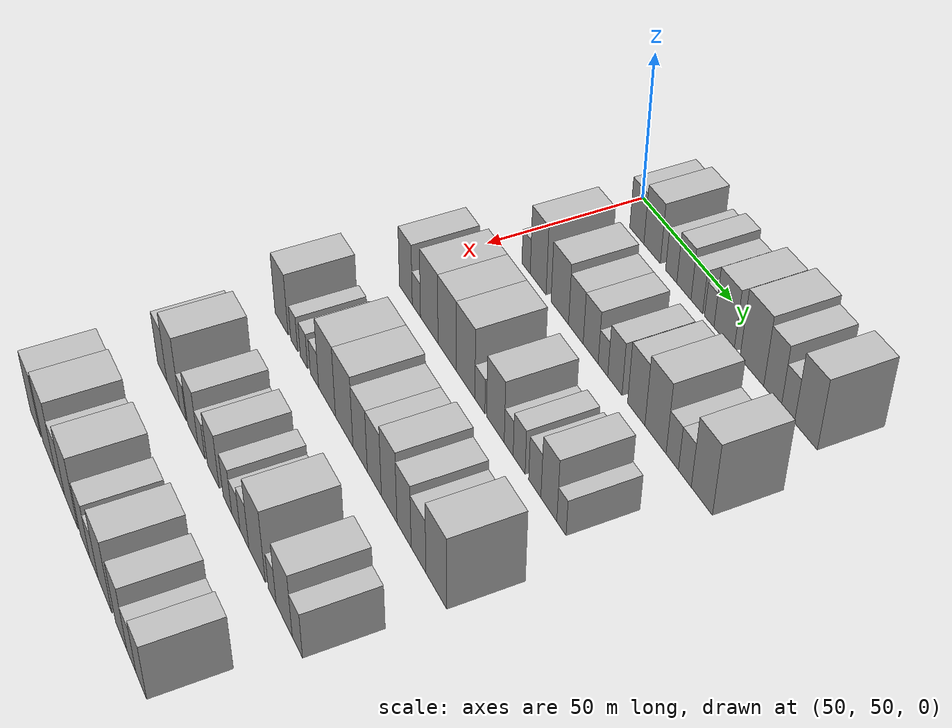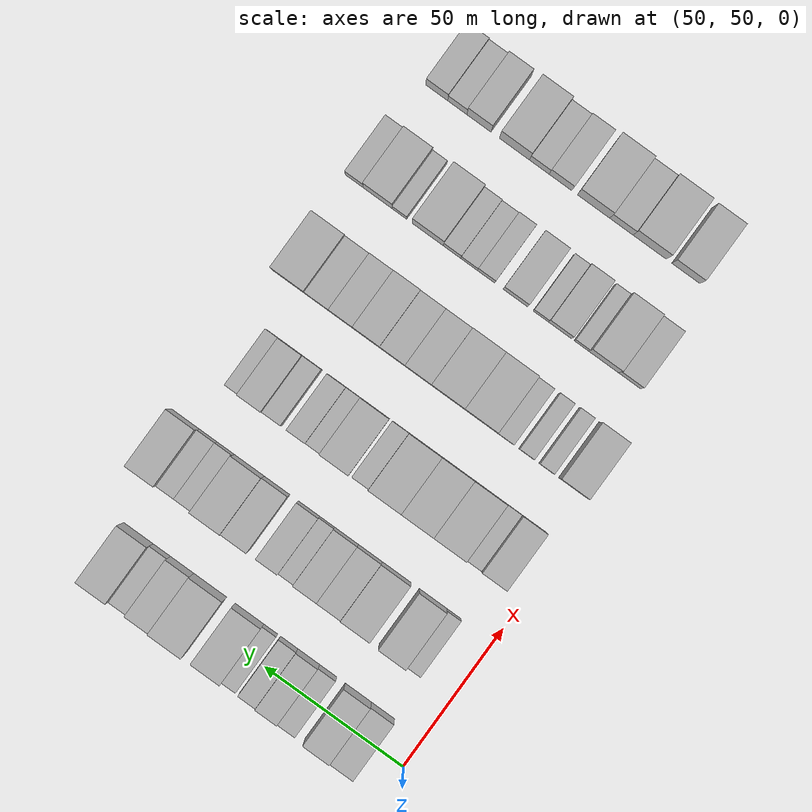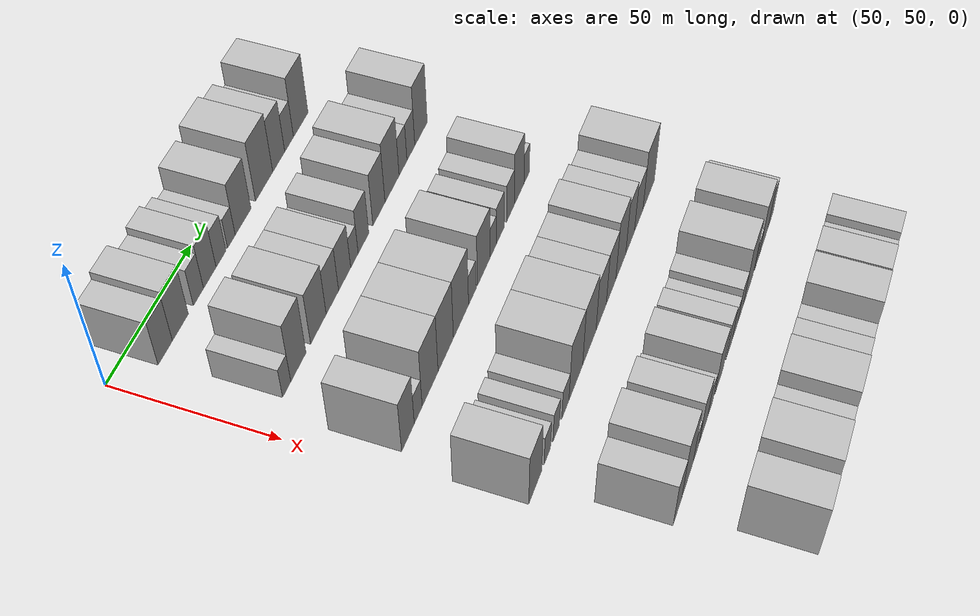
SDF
<sdf version="1.6">
 <world name="default">
  <model name="building_63">
   <static>1</static>
   <pose>50.0000 64.4754 0 0.000000 0.000000 0.000000</pose>
   <link name="link">
    <pose>0 0 9.00 0 0 0</pose>
    <collision name="collision"><geometry><box><size>20.0000 8.2859 18.0000</size></box></geometry></collision>
    <visual name="visual">
     <cast_shadows>0</cast_shadows>
     <geometry><box><size>20.0000 8.2859 18.0000</size></box></geometry>
     <material>
      <script>
       <uri>model://HANNAS_wall/materials/scripts</uri>
       <uri>model://HANNAS_wall/materials/textures</uri>
       <name>vrc/HANNAS_wall</name>
      </script>
     </material>
    </visual>
   </link>
  </model>
  <model name="building_64">
   <static>1</static>
   <pose>50.0000 73.3406 0 0.000000 0.000000 0.000000</pose>
   <link name="link">
    <pose>0 0 10.50 0 0 0</pose>
    <collision name="collision"><geometry><box><size>20.0000 9.4444 21.0000</size></box></geometry></collision>
    <visual name="visual">
     <cast_shadows>0</cast_shadows>
     <geometry><box><size>20.0000 9.4444 21.0000</size></box></geometry>
     <material>
      <script>
       <uri>model://HANNAS_wall/materials/scripts</uri>
       <uri>model://HANNAS_wall/materials/textures</uri>
       <name>vrc/HANNAS_wall</name>
      </script>
     </material>
    </visual>
   </link>
  </model>
  <model name="building_65">
   <static>1</static>
   <pose>50.0000 84.1799 0 0.000000 0.000000 0.000000</pose>
   <link name="link">
    <pose>0 0 7.50 0 0 0</pose>
    <collision name="collision"><geometry><box><size>20.0000 6.2342 15.0000</size></box></geometry></collision>
    <visual name="visual">
     <cast_shadows>0</cast_shadows>
     <geometry><box><size>20.0000 6.2342 15.0000</size></box></geometry>
     <material>
      <script>
       <uri>model://HANNAS_wall/materials/scripts</uri>
       <uri>model://HANNAS_wall/materials/textures</uri>
       <name>vrc/HANNAS_wall</name>
      </script>
     </material>
    </visual>
   </link>
  </model>
  <model name="building_66">
   <static>1</static>
   <pose>50.0000 91.1978 0 0.000000 0.000000 0.000000</pose>
   <link name="link">
    <pose>0 0 9.00 0 0 0</pose>
    <collision name="collision"><geometry><box><size>20.0000 7.8017 18.0000</size></box></geometry></collision>
    <visual name="visual">
     <cast_shadows>0</cast_shadows>
     <geometry><box><size>20.0000 7.8017 18.0000</size></box></geometry>
     <material>
      <script>
       <uri>model://HANNAS_wall/materials/scripts</uri>
       <uri>model://HANNAS_wall/materials/textures</uri>
       <name>vrc/HANNAS_wall</name>
      </script>
     </material>
    </visual>
   </link>
  </model>
  <model name="building_67">
   <static>1</static>
   <pose>50.0000 98.2192 0 0.000000 0.000000 0.000000</pose>
   <link name="link">
    <pose>0 0 7.50 0 0 0</pose>
    <collision name="collision"><geometry><box><size>20.0000 6.2409 15.0000</size></box></geometry></collision>
    <visual name="visual">
     <cast_shadows>0</cast_shadows>
     <geometry><box><size>20.0000 6.2409 15.0000</size></box></geometry>
     <material>
      <script>
       <uri>model://HANNAS_wall/materials/scripts</uri>
       <uri>model://HANNAS_wall/materials/textures</uri>
       <name>vrc/HANNAS_wall</name>
      </script>
     </material>
    </visual>
   </link>
  </model>
  <model name="building_68">
   <static>1</static>
   <pose>50.0000 104.8364 0 0.000000 0.000000 0.000000</pose>
   <link name="link">
    <pose>0 0 6.00 0 0 0</pose>
    <collision name="collision"><geometry><box><size>20.0000 4.9936 12.0000</size></box></geometry></collision>
    <visual name="visual">
     <cast_shadows>0</cast_shadows>
     <geometry><box><size>20.0000 4.9936 12.0000</size></box></geometry>
     <material>
      <script>
       <uri>model://HANNAS_wall/materials/scripts</uri>
       <uri>model://HANNAS_wall/materials/textures</uri>
       <name>vrc/HANNAS_wall</name>
      </script>
     </material>
    </visual>
   </link>
  </model>
  <model name="building_69">
   <static>1</static>
   <pose>50.0000 112.5214 0 0.000000 0.000000 0.000000</pose>
   <link name="link">
    <pose>0 0 10.50 0 0 0</pose>
    <collision name="collision"><geometry><box><size>20.0000 10.3764 21.0000</size></box></geometry></collision>
    <visual name="visual">
     <cast_shadows>0</cast_shadows>
     <geometry><box><size>20.0000 10.3764 21.0000</size></box></geometry>
     <material>
      <script>
       <uri>model://HANNAS_wall/materials/scripts</uri>
       <uri>model://HANNAS_wall/materials/textures</uri>
       <name>vrc/HANNAS_wall</name>
      </script>
     </material>
    </visual>
   </link>
  </model>
  <model name="building_70">
   <static>1</static>
   <pose>50.0000 126.6201 0 0.000000 0.000000 0.000000</pose>
   <link name="link">
    <pose>0 0 12.00 0 0 0</pose>
    <collision name="collision"><geometry><box><size>20.0000 11.8209 24.0000</size></box></geometry></collision>
    <visual name="visual">
     <cast_shadows>0</cast_shadows>
     <geometry><box><size>20.0000 11.8209 24.0000</size></box></geometry>
     <material>
      <script>
       <uri>model://HANNAS_wall/materials/scripts</uri>
       <uri>model://HANNAS_wall/materials/textures</uri>
       <name>vrc/HANNAS_wall</name>
      </script>
     </material>
    </visual>
   </link>
  </model>
  <model name="building_71">
   <static>1</static>
   <pose>50.0000 136.7458 0 0.000000 0.000000 0.000000</pose>
   <link name="link">
    <pose>0 0 10.50 0 0 0</pose>
    <collision name="collision"><geometry><box><size>20.0000 8.4306 21.0000</size></box></geometry></collision>
    <visual name="visual">
     <cast_shadows>0</cast_shadows>
     <geometry><box><size>20.0000 8.4306 21.0000</size></box></geometry>
     <material>
      <script>
       <uri>model://HANNAS_wall/materials/scripts</uri>
       <uri>model://HANNAS_wall/materials/textures</uri>
       <name>vrc/HANNAS_wall</name>
      </script>
     </material>
    </visual>
   </link>
  </model>
  <model name="building_72">
   <static>1</static>
   <pose>50.0000 144.0854 0 0.000000 0.000000 0.000000</pose>
   <link name="link">
    <pose>0 0 7.50 0 0 0</pose>
    <collision name="collision"><geometry><box><size>20.0000 6.2485 15.0000</size></box></geometry></collision>
    <visual name="visual">
     <cast_shadows>0</cast_shadows>
     <geometry><box><size>20.0000 6.2485 15.0000</size></box></geometry>
     <material>
      <script>
       <uri>model://HANNAS_wall/materials/scripts</uri>
       <uri>model://HANNAS_wall/materials/textures</uri>
       <name>vrc/HANNAS_wall</name>
      </script>
     </material>
    </visual>
   </link>
  </model>
  <model name="building_73">
   <static>1</static>
   <pose>50.0000 152.5046 0 0.000000 0.000000 0.000000</pose>
   <link name="link">
    <pose>0 0 12.00 0 0 0</pose>
    <collision name="collision"><geometry><box><size>20.0000 10.5899 24.0000</size></box></geometry></collision>
    <visual name="visual">
     <cast_shadows>0</cast_shadows>
     <geometry><box><size>20.0000 10.5899 24.0000</size></box></geometry>
     <material>
      <script>
       <uri>model://HANNAS_wall/materials/scripts</uri>
       <uri>model://HANNAS_wall/materials/textures</uri>
       <name>vrc/HANNAS_wall</name>
      </script>
     </material>
    </visual>
   </link>
  </model>
  <model name="building_191">
   <static>1</static>
   <pose>85.0000 64.3727 0 0.000000 0.000000 0.000000</pose>
   <link name="link">
    <pose>0 0 6.00 0 0 0</pose>
    <collision name="collision"><geometry><box><size>20.0000 5.1861 12.0000</size></box></geometry></collision>
    <visual name="visual">
     <cast_shadows>0</cast_shadows>
     <geometry><box><size>20.0000 5.1861 12.0000</size></box></geometry>
     <material>
      <script>
       <uri>model://HANNAS_wall/materials/scripts</uri>
       <uri>model://HANNAS_wall/materials/textures</uri>
       <name>vrc/HANNAS_wall</name>
      </script>
     </material>
    </visual>
   </link>
  </model>
  <model name="building_192">
   <static>1</static>
   <pose>85.0000 71.8611 0 0.000000 0.000000 0.000000</pose>
   <link name="link">
    <pose>0 0 12.00 0 0 0</pose>
    <collision name="collision"><geometry><box><size>20.0000 9.7908 24.0000</size></box></geometry></collision>
    <visual name="visual">
     <cast_shadows>0</cast_shadows>
     <geometry><box><size>20.0000 9.7908 24.0000</size></box></geometry>
     <material>
      <script>
       <uri>model://HANNAS_wall/materials/scripts</uri>
       <uri>model://HANNAS_wall/materials/textures</uri>
       <name>vrc/HANNAS_wall</name>
      </script>
     </material>
    </visual>
   </link>
  </model>
  <model name="building_193">
   <static>1</static>
   <pose>85.0000 84.9729 0 0.000000 0.000000 0.000000</pose>
   <link name="link">
    <pose>0 0 10.50 0 0 0</pose>
    <collision name="collision"><geometry><box><size>20.0000 10.4328 21.0000</size></box></geometry></collision>
    <visual name="visual">
     <cast_shadows>0</cast_shadows>
     <geometry><box><size>20.0000 10.4328 21.0000</size></box></geometry>
     <material>
      <script>
       <uri>model://HANNAS_wall/materials/scripts</uri>
       <uri>model://HANNAS_wall/materials/textures</uri>
       <name>vrc/HANNAS_wall</name>
      </script>
     </material>
    </visual>
   </link>
  </model>
  <model name="building_194">
   <static>1</static>
   <pose>85.0000 94.4465 0 0.000000 0.000000 0.000000</pose>
   <link name="link">
    <pose>0 0 9.00 0 0 0</pose>
    <collision name="collision"><geometry><box><size>20.0000 8.5144 18.0000</size></box></geometry></collision>
    <visual name="visual">
     <cast_shadows>0</cast_shadows>
     <geometry><box><size>20.0000 8.5144 18.0000</size></box></geometry>
     <material>
      <script>
       <uri>model://HANNAS_wall/materials/scripts</uri>
       <uri>model://HANNAS_wall/materials/textures</uri>
       <name>vrc/HANNAS_wall</name>
      </script>
     </material>
    </visual>
   </link>
  </model>
  <model name="building_195">
   <static>1</static>
   <pose>85.0000 102.9443 0 0.000000 0.000000 0.000000</pose>
   <link name="link">
    <pose>0 0 9.00 0 0 0</pose>
    <collision name="collision"><geometry><box><size>20.0000 8.4813 18.0000</size></box></geometry></collision>
    <visual name="visual">
     <cast_shadows>0</cast_shadows>
     <geometry><box><size>20.0000 8.4813 18.0000</size></box></geometry>
     <material>
      <script>
       <uri>model://HANNAS_wall/materials/scripts</uri>
       <uri>model://HANNAS_wall/materials/textures</uri>
       <name>vrc/HANNAS_wall</name>
      </script>
     </material>
    </visual>
   </link>
  </model>
  <model name="building_196">
   <static>1</static>
   <pose>85.0000 109.8589 0 0.000000 0.000000 0.000000</pose>
   <link name="link">
    <pose>0 0 6.00 0 0 0</pose>
    <collision name="collision"><geometry><box><size>20.0000 5.3480 12.0000</size></box></geometry></collision>
    <visual name="visual">
     <cast_shadows>0</cast_shadows>
     <geometry><box><size>20.0000 5.3480 12.0000</size></box></geometry>
     <material>
      <script>
       <uri>model://HANNAS_wall/materials/scripts</uri>
       <uri>model://HANNAS_wall/materials/textures</uri>
       <name>vrc/HANNAS_wall</name>
      </script>
     </material>
    </visual>
   </link>
  </model>
  <model name="building_197">
   <static>1</static>
   <pose>85.0000 116.4089 0 0.000000 0.000000 0.000000</pose>
   <link name="link">
    <pose>0 0 9.00 0 0 0</pose>
    <collision name="collision"><geometry><box><size>20.0000 7.7520 18.0000</size></box></geometry></collision>
    <visual name="visual">
     <cast_shadows>0</cast_shadows>
     <geometry><box><size>20.0000 7.7520 18.0000</size></box></geometry>
     <material>
      <script>
       <uri>model://HANNAS_wall/materials/scripts</uri>
       <uri>model://HANNAS_wall/materials/textures</uri>
       <name>vrc/HANNAS_wall</name>
      </script>
     </material>
    </visual>
   </link>
  </model>
  <model name="building_198">
   <static>1</static>
   <pose>85.0000 127.8521 0 0.000000 0.000000 0.000000</pose>
   <link name="link">
    <pose>0 0 10.50 0 0 0</pose>
    <collision name="collision"><geometry><box><size>20.0000 9.1344 21.0000</size></box></geometry></collision>
    <visual name="visual">
     <cast_shadows>0</cast_shadows>
     <geometry><box><size>20.0000 9.1344 21.0000</size></box></geometry>
     <material>
      <script>
       <uri>model://HANNAS_wall/materials/scripts</uri>
       <uri>model://HANNAS_wall/materials/textures</uri>
       <name>vrc/HANNAS_wall</name>
      </script>
     </material>
    </visual>
   </link>
  </model>
  <model name="building_199">
   <static>1</static>
   <pose>85.0000 137.8445 0 0.000000 0.000000 0.000000</pose>
   <link name="link">
    <pose>0 0 12.00 0 0 0</pose>
    <collision name="collision"><geometry><box><size>20.0000 10.8503 24.0000</size></box></geometry></collision>
    <visual name="visual">
     <cast_shadows>0</cast_shadows>
     <geometry><box><size>20.0000 10.8503 24.0000</size></box></geometry>
     <material>
      <script>
       <uri>model://HANNAS_wall/materials/scripts</uri>
       <uri>model://HANNAS_wall/materials/textures</uri>
       <name>vrc/HANNAS_wall</name>
      </script>
     </material>
    </visual>
   </link>
  </model>
  <model name="building_200">
   <static>1</static>
   <pose>85.0000 146.3585 0 0.000000 0.000000 0.000000</pose>
   <link name="link">
    <pose>0 0 7.50 0 0 0</pose>
    <collision name="collision"><geometry><box><size>20.0000 6.1777 15.0000</size></box></geometry></collision>
    <visual name="visual">
     <cast_shadows>0</cast_shadows>
     <geometry><box><size>20.0000 6.1777 15.0000</size></box></geometry>
     <material>
      <script>
       <uri>model://HANNAS_wall/materials/scripts</uri>
       <uri>model://HANNAS_wall/materials/textures</uri>
       <name>vrc/HANNAS_wall</name>
      </script>
     </material>
    </visual>
   </link>
  </model>
  <model name="building_201">
   <static>1</static>
   <pose>85.0000 152.6045 0 0.000000 0.000000 0.000000</pose>
   <link name="link">
    <pose>0 0 7.50 0 0 0</pose>
    <collision name="collision"><geometry><box><size>20.0000 6.3144 15.0000</size></box></geometry></collision>
    <visual name="visual">
     <cast_shadows>0</cast_shadows>
     <geometry><box><size>20.0000 6.3144 15.0000</size></box></geometry>
     <material>
      <script>
       <uri>model://HANNAS_wall/materials/scripts</uri>
       <uri>model://HANNAS_wall/materials/textures</uri>
       <name>vrc/HANNAS_wall</name>
      </script>
     </material>
    </visual>
   </link>
  </model>
  <model name="building_202">
   <static>1</static>
   <pose>85.0000 160.8288 0 0.000000 0.000000 0.000000</pose>
   <link name="link">
    <pose>0 0 12.00 0 0 0</pose>
    <collision name="collision"><geometry><box><size>20.0000 10.1341 24.0000</size></box></geometry></collision>
    <visual name="visual">
     <cast_shadows>0</cast_shadows>
     <geometry><box><size>20.0000 10.1341 24.0000</size></box></geometry>
     <material>
      <script>
       <uri>model://HANNAS_wall/materials/scripts</uri>
       <uri>model://HANNAS_wall/materials/textures</uri>
       <name>vrc/HANNAS_wall</name>
      </script>
     </material>
    </visual>
   </link>
  </model>
  <model name="building_322">
   <static>1</static>
   <pose>120.0000 61.0671 0 0.000000 0.000000 0.000000</pose>
   <link name="link">
    <pose>0 0 10.50 0 0 0</pose>
    <collision name="collision"><geometry><box><size>20.0000 8.7876 21.0000</size></box></geometry></collision>
    <visual name="visual">
     <cast_shadows>0</cast_shadows>
     <geometry><box><size>20.0000 8.7876 21.0000</size></box></geometry>
     <material>
      <script>
       <uri>model://HANNAS_wall/materials/scripts</uri>
       <uri>model://HANNAS_wall/materials/textures</uri>
       <name>vrc/HANNAS_wall</name>
      </script>
     </material>
    </visual>
   </link>
  </model>
  <model name="building_323">
   <static>1</static>
   <pose>120.0000 68.2368 0 0.000000 0.000000 0.000000</pose>
   <link name="link">
    <pose>0 0 6.00 0 0 0</pose>
    <collision name="collision"><geometry><box><size>20.0000 5.5518 12.0000</size></box></geometry></collision>
    <visual name="visual">
     <cast_shadows>0</cast_shadows>
     <geometry><box><size>20.0000 5.5518 12.0000</size></box></geometry>
     <material>
      <script>
       <uri>model://HANNAS_wall/materials/scripts</uri>
       <uri>model://HANNAS_wall/materials/textures</uri>
       <name>vrc/HANNAS_wall</name>
      </script>
     </material>
    </visual>
   </link>
  </model>
  <model name="building_324">
   <static>1</static>
   <pose>120.0000 76.8002 0 0.000000 0.000000 0.000000</pose>
   <link name="link">
    <pose>0 0 12.00 0 0 0</pose>
    <collision name="collision"><geometry><box><size>20.0000 11.5750 24.0000</size></box></geometry></collision>
    <visual name="visual">
     <cast_shadows>0</cast_shadows>
     <geometry><box><size>20.0000 11.5750 24.0000</size></box></geometry>
     <material>
      <script>
       <uri>model://HANNAS_wall/materials/scripts</uri>
       <uri>model://HANNAS_wall/materials/textures</uri>
       <name>vrc/HANNAS_wall</name>
      </script>
     </material>
    </visual>
   </link>
  </model>
  <model name="building_325">
   <static>1</static>
   <pose>120.0000 88.3191 0 0.000000 0.000000 0.000000</pose>
   <link name="link">
    <pose>0 0 12.00 0 0 0</pose>
    <collision name="collision"><geometry><box><size>20.0000 11.4628 24.0000</size></box></geometry></collision>
    <visual name="visual">
     <cast_shadows>0</cast_shadows>
     <geometry><box><size>20.0000 11.4628 24.0000</size></box></geometry>
     <material>
      <script>
       <uri>model://HANNAS_wall/materials/scripts</uri>
       <uri>model://HANNAS_wall/materials/textures</uri>
       <name>vrc/HANNAS_wall</name>
      </script>
     </material>
    </visual>
   </link>
  </model>
  <model name="building_326">
   <static>1</static>
   <pose>120.0000 99.9039 0 0.000000 0.000000 0.000000</pose>
   <link name="link">
    <pose>0 0 12.00 0 0 0</pose>
    <collision name="collision"><geometry><box><size>20.0000 11.7069 24.0000</size></box></geometry></collision>
    <visual name="visual">
     <cast_shadows>0</cast_shadows>
     <geometry><box><size>20.0000 11.7069 24.0000</size></box></geometry>
     <material>
      <script>
       <uri>model://HANNAS_wall/materials/scripts</uri>
       <uri>model://HANNAS_wall/materials/textures</uri>
       <name>vrc/HANNAS_wall</name>
      </script>
     </material>
    </visual>
   </link>
  </model>
  <model name="building_327">
   <static>1</static>
   <pose>120.0000 108.7568 0 0.000000 0.000000 0.000000</pose>
   <link name="link">
    <pose>0 0 6.00 0 0 0</pose>
    <collision name="collision"><geometry><box><size>20.0000 5.9990 12.0000</size></box></geometry></collision>
    <visual name="visual">
     <cast_shadows>0</cast_shadows>
     <geometry><box><size>20.0000 5.9990 12.0000</size></box></geometry>
     <material>
      <script>
       <uri>model://HANNAS_wall/materials/scripts</uri>
       <uri>model://HANNAS_wall/materials/textures</uri>
       <name>vrc/HANNAS_wall</name>
      </script>
     </material>
    </visual>
   </link>
  </model>
  <model name="building_328">
   <static>1</static>
   <pose>120.0000 117.9341 0 0.000000 0.000000 0.000000</pose>
   <link name="link">
    <pose>0 0 10.50 0 0 0</pose>
    <collision name="collision"><geometry><box><size>20.0000 10.3556 21.0000</size></box></geometry></collision>
    <visual name="visual">
     <cast_shadows>0</cast_shadows>
     <geometry><box><size>20.0000 10.3556 21.0000</size></box></geometry>
     <material>
      <script>
       <uri>model://HANNAS_wall/materials/scripts</uri>
       <uri>model://HANNAS_wall/materials/textures</uri>
       <name>vrc/HANNAS_wall</name>
      </script>
     </material>
    </visual>
   </link>
  </model>
  <model name="building_329">
   <static>1</static>
   <pose>120.0000 125.6752 0 0.000000 0.000000 0.000000</pose>
   <link name="link">
    <pose>0 0 6.00 0 0 0</pose>
    <collision name="collision"><geometry><box><size>20.0000 5.1267 12.0000</size></box></geometry></collision>
    <visual name="visual">
     <cast_shadows>0</cast_shadows>
     <geometry><box><size>20.0000 5.1267 12.0000</size></box></geometry>
     <material>
      <script>
       <uri>model://HANNAS_wall/materials/scripts</uri>
       <uri>model://HANNAS_wall/materials/textures</uri>
       <name>vrc/HANNAS_wall</name>
      </script>
     </material>
    </visual>
   </link>
  </model>
  <model name="building_330">
   <static>1</static>
   <pose>120.0000 131.5993 0 0.000000 0.000000 0.000000</pose>
   <link name="link">
    <pose>0 0 7.50 0 0 0</pose>
    <collision name="collision"><geometry><box><size>20.0000 6.7216 15.0000</size></box></geometry></collision>
    <visual name="visual">
     <cast_shadows>0</cast_shadows>
     <geometry><box><size>20.0000 6.7216 15.0000</size></box></geometry>
     <material>
      <script>
       <uri>model://HANNAS_wall/materials/scripts</uri>
       <uri>model://HANNAS_wall/materials/textures</uri>
       <name>vrc/HANNAS_wall</name>
      </script>
     </material>
    </visual>
   </link>
  </model>
  <model name="building_331">
   <static>1</static>
   <pose>120.0000 140.3103 0 0.000000 0.000000 0.000000</pose>
   <link name="link">
    <pose>0 0 7.50 0 0 0</pose>
    <collision name="collision"><geometry><box><size>20.0000 6.7004 15.0000</size></box></geometry></collision>
    <visual name="visual">
     <cast_shadows>0</cast_shadows>
     <geometry><box><size>20.0000 6.7004 15.0000</size></box></geometry>
     <material>
      <script>
       <uri>model://HANNAS_wall/materials/scripts</uri>
       <uri>model://HANNAS_wall/materials/textures</uri>
       <name>vrc/HANNAS_wall</name>
      </script>
     </material>
    </visual>
   </link>
  </model>
  <model name="building_332">
   <static>1</static>
   <pose>120.0000 147.9223 0 0.000000 0.000000 0.000000</pose>
   <link name="link">
    <pose>0 0 10.50 0 0 0</pose>
    <collision name="collision"><geometry><box><size>20.0000 8.5234 21.0000</size></box></geometry></collision>
    <visual name="visual">
     <cast_shadows>0</cast_shadows>
     <geometry><box><size>20.0000 8.5234 21.0000</size></box></geometry>
     <material>
      <script>
       <uri>model://HANNAS_wall/materials/scripts</uri>
       <uri>model://HANNAS_wall/materials/textures</uri>
       <name>vrc/HANNAS_wall</name>
      </script>
     </material>
    </visual>
   </link>
  </model>
  <model name="building_333">
   <static>1</static>
   <pose>120.0000 154.6234 0 0.000000 0.000000 0.000000</pose>
   <link name="link">
    <pose>0 0 6.00 0 0 0</pose>
    <collision name="collision"><geometry><box><size>20.0000 4.8788 12.0000</size></box></geometry></collision>
    <visual name="visual">
     <cast_shadows>0</cast_shadows>
     <geometry><box><size>20.0000 4.8788 12.0000</size></box></geometry>
     <material>
      <script>
       <uri>model://HANNAS_wall/materials/scripts</uri>
       <uri>model://HANNAS_wall/materials/textures</uri>
       <name>vrc/HANNAS_wall</name>
      </script>
     </material>
    </visual>
   </link>
  </model>
  <model name="building_448">
   <static>1</static>
   <pose>155.0000 57.8846 0 0.000000 0.000000 0.000000</pose>
   <link name="link">
    <pose>0 0 10.50 0 0 0</pose>
    <collision name="collision"><geometry><box><size>20.0000 9.9804 21.0000</size></box></geometry></collision>
    <visual name="visual">
     <cast_shadows>0</cast_shadows>
     <geometry><box><size>20.0000 9.9804 21.0000</size></box></geometry>
     <material>
      <script>
       <uri>model://HANNAS_wall/materials/scripts</uri>
       <uri>model://HANNAS_wall/materials/textures</uri>
       <name>vrc/HANNAS_wall</name>
      </script>
     </material>
    </visual>
   </link>
  </model>
  <model name="building_449">
   <static>1</static>
   <pose>155.0000 67.4353 0 0.000000 0.000000 0.000000</pose>
   <link name="link">
    <pose>0 0 6.00 0 0 0</pose>
    <collision name="collision"><geometry><box><size>20.0000 5.1209 12.0000</size></box></geometry></collision>
    <visual name="visual">
     <cast_shadows>0</cast_shadows>
     <geometry><box><size>20.0000 5.1209 12.0000</size></box></geometry>
     <material>
      <script>
       <uri>model://HANNAS_wall/materials/scripts</uri>
       <uri>model://HANNAS_wall/materials/textures</uri>
       <name>vrc/HANNAS_wall</name>
      </script>
     </material>
    </visual>
   </link>
  </model>
  <model name="building_450">
   <static>1</static>
   <pose>155.0000 74.6283 0 0.000000 0.000000 0.000000</pose>
   <link name="link">
    <pose>0 0 6.00 0 0 0</pose>
    <collision name="collision"><geometry><box><size>20.0000 5.2652 12.0000</size></box></geometry></collision>
    <visual name="visual">
     <cast_shadows>0</cast_shadows>
     <geometry><box><size>20.0000 5.2652 12.0000</size></box></geometry>
     <material>
      <script>
       <uri>model://HANNAS_wall/materials/scripts</uri>
       <uri>model://HANNAS_wall/materials/textures</uri>
       <name>vrc/HANNAS_wall</name>
      </script>
     </material>
    </visual>
   </link>
  </model>
  <model name="building_451">
   <static>1</static>
   <pose>155.0000 82.2495 0 0.000000 0.000000 0.000000</pose>
   <link name="link">
    <pose>0 0 6.00 0 0 0</pose>
    <collision name="collision"><geometry><box><size>20.0000 5.9772 12.0000</size></box></geometry></collision>
    <visual name="visual">
     <cast_shadows>0</cast_shadows>
     <geometry><box><size>20.0000 5.9772 12.0000</size></box></geometry>
     <material>
      <script>
       <uri>model://HANNAS_wall/materials/scripts</uri>
       <uri>model://HANNAS_wall/materials/textures</uri>
       <name>vrc/HANNAS_wall</name>
      </script>
     </material>
    </visual>
   </link>
  </model>
  <model name="building_452">
   <static>1</static>
   <pose>155.0000 91.1085 0 0.000000 0.000000 0.000000</pose>
   <link name="link">
    <pose>0 0 12.00 0 0 0</pose>
    <collision name="collision"><geometry><box><size>20.0000 11.7408 24.0000</size></box></geometry></collision>
    <visual name="visual">
     <cast_shadows>0</cast_shadows>
     <geometry><box><size>20.0000 11.7408 24.0000</size></box></geometry>
     <material>
      <script>
       <uri>model://HANNAS_wall/materials/scripts</uri>
       <uri>model://HANNAS_wall/materials/textures</uri>
       <name>vrc/HANNAS_wall</name>
      </script>
     </material>
    </visual>
   </link>
  </model>
  <model name="building_453">
   <static>1</static>
   <pose>155.0000 102.8813 0 0.000000 0.000000 0.000000</pose>
   <link name="link">
    <pose>0 0 12.00 0 0 0</pose>
    <collision name="collision"><geometry><box><size>20.0000 11.8046 24.0000</size></box></geometry></collision>
    <visual name="visual">
     <cast_shadows>0</cast_shadows>
     <geometry><box><size>20.0000 11.8046 24.0000</size></box></geometry>
     <material>
      <script>
       <uri>model://HANNAS_wall/materials/scripts</uri>
       <uri>model://HANNAS_wall/materials/textures</uri>
       <name>vrc/HANNAS_wall</name>
      </script>
     </material>
    </visual>
   </link>
  </model>
  <model name="building_454">
   <static>1</static>
   <pose>155.0000 113.4665 0 0.000000 0.000000 0.000000</pose>
   <link name="link">
    <pose>0 0 10.50 0 0 0</pose>
    <collision name="collision"><geometry><box><size>20.0000 9.3658 21.0000</size></box></geometry></collision>
    <visual name="visual">
     <cast_shadows>0</cast_shadows>
     <geometry><box><size>20.0000 9.3658 21.0000</size></box></geometry>
     <material>
      <script>
       <uri>model://HANNAS_wall/materials/scripts</uri>
       <uri>model://HANNAS_wall/materials/textures</uri>
       <name>vrc/HANNAS_wall</name>
      </script>
     </material>
    </visual>
   </link>
  </model>
  <model name="building_455">
   <static>1</static>
   <pose>155.0000 122.6212 0 0.000000 0.000000 0.000000</pose>
   <link name="link">
    <pose>0 0 10.50 0 0 0</pose>
    <collision name="collision"><geometry><box><size>20.0000 8.9437 21.0000</size></box></geometry></collision>
    <visual name="visual">
     <cast_shadows>0</cast_shadows>
     <geometry><box><size>20.0000 8.9437 21.0000</size></box></geometry>
     <material>
      <script>
       <uri>model://HANNAS_wall/materials/scripts</uri>
       <uri>model://HANNAS_wall/materials/textures</uri>
       <name>vrc/HANNAS_wall</name>
      </script>
     </material>
    </visual>
   </link>
  </model>
  <model name="building_456">
   <static>1</static>
   <pose>155.0000 131.8938 0 0.000000 0.000000 0.000000</pose>
   <link name="link">
    <pose>0 0 12.00 0 0 0</pose>
    <collision name="collision"><geometry><box><size>20.0000 9.6014 24.0000</size></box></geometry></collision>
    <visual name="visual">
     <cast_shadows>0</cast_shadows>
     <geometry><box><size>20.0000 9.6014 24.0000</size></box></geometry>
     <material>
      <script>
       <uri>model://HANNAS_wall/materials/scripts</uri>
       <uri>model://HANNAS_wall/materials/textures</uri>
       <name>vrc/HANNAS_wall</name>
      </script>
     </material>
    </visual>
   </link>
  </model>
  <model name="building_457">
   <static>1</static>
   <pose>155.0000 140.9602 0 0.000000 0.000000 0.000000</pose>
   <link name="link">
    <pose>0 0 10.50 0 0 0</pose>
    <collision name="collision"><geometry><box><size>20.0000 8.5316 21.0000</size></box></geometry></collision>
    <visual name="visual">
     <cast_shadows>0</cast_shadows>
     <geometry><box><size>20.0000 8.5316 21.0000</size></box></geometry>
     <material>
      <script>
       <uri>model://HANNAS_wall/materials/scripts</uri>
       <uri>model://HANNAS_wall/materials/textures</uri>
       <name>vrc/HANNAS_wall</name>
      </script>
     </material>
    </visual>
   </link>
  </model>
  <model name="building_458">
   <static>1</static>
   <pose>155.0000 149.5437 0 0.000000 0.000000 0.000000</pose>
   <link name="link">
    <pose>0 0 9.00 0 0 0</pose>
    <collision name="collision"><geometry><box><size>20.0000 8.6353 18.0000</size></box></geometry></collision>
    <visual name="visual">
     <cast_shadows>0</cast_shadows>
     <geometry><box><size>20.0000 8.6353 18.0000</size></box></geometry>
     <material>
      <script>
       <uri>model://HANNAS_wall/materials/scripts</uri>
       <uri>model://HANNAS_wall/materials/textures</uri>
       <name>vrc/HANNAS_wall</name>
      </script>
     </material>
    </visual>
   </link>
  </model>
  <model name="building_459">
   <static>1</static>
   <pose>155.0000 159.7556 0 0.000000 0.000000 0.000000</pose>
   <link name="link">
    <pose>0 0 12.00 0 0 0</pose>
    <collision name="collision"><geometry><box><size>20.0000 11.7884 24.0000</size></box></geometry></collision>
    <visual name="visual">
     <cast_shadows>0</cast_shadows>
     <geometry><box><size>20.0000 11.7884 24.0000</size></box></geometry>
     <material>
      <script>
       <uri>model://HANNAS_wall/materials/scripts</uri>
       <uri>model://HANNAS_wall/materials/textures</uri>
       <name>vrc/HANNAS_wall</name>
      </script>
     </material>
    </visual>
   </link>
  </model>
  <model name="building_581">
   <static>1</static>
   <pose>190.0000 62.8446 0 0.000000 0.000000 0.000000</pose>
   <link name="link">
    <pose>0 0 9.00 0 0 0</pose>
    <collision name="collision"><geometry><box><size>20.0000 7.9235 18.0000</size></box></geometry></collision>
    <visual name="visual">
     <cast_shadows>0</cast_shadows>
     <geometry><box><size>20.0000 7.9235 18.0000</size></box></geometry>
     <material>
      <script>
       <uri>model://HANNAS_wall/materials/scripts</uri>
       <uri>model://HANNAS_wall/materials/textures</uri>
       <name>vrc/HANNAS_wall</name>
      </script>
     </material>
    </visual>
   </link>
  </model>
  <model name="building_582">
   <static>1</static>
   <pose>190.0000 72.1718 0 0.000000 0.000000 0.000000</pose>
   <link name="link">
    <pose>0 0 12.00 0 0 0</pose>
    <collision name="collision"><geometry><box><size>20.0000 10.7308 24.0000</size></box></geometry></collision>
    <visual name="visual">
     <cast_shadows>0</cast_shadows>
     <geometry><box><size>20.0000 10.7308 24.0000</size></box></geometry>
     <material>
      <script>
       <uri>model://HANNAS_wall/materials/scripts</uri>
       <uri>model://HANNAS_wall/materials/textures</uri>
       <name>vrc/HANNAS_wall</name>
      </script>
     </material>
    </visual>
   </link>
  </model>
  <model name="building_583">
   <static>1</static>
   <pose>190.0000 80.1040 0 0.000000 0.000000 0.000000</pose>
   <link name="link">
    <pose>0 0 6.00 0 0 0</pose>
    <collision name="collision"><geometry><box><size>20.0000 5.1336 12.0000</size></box></geometry></collision>
    <visual name="visual">
     <cast_shadows>0</cast_shadows>
     <geometry><box><size>20.0000 5.1336 12.0000</size></box></geometry>
     <material>
      <script>
       <uri>model://HANNAS_wall/materials/scripts</uri>
       <uri>model://HANNAS_wall/materials/textures</uri>
       <name>vrc/HANNAS_wall</name>
      </script>
     </material>
    </visual>
   </link>
  </model>
  <model name="building_584">
   <static>1</static>
   <pose>190.0000 87.8103 0 0.000000 0.000000 0.000000</pose>
   <link name="link">
    <pose>0 0 9.00 0 0 0</pose>
    <collision name="collision"><geometry><box><size>20.0000 8.2791 18.0000</size></box></geometry></collision>
    <visual name="visual">
     <cast_shadows>0</cast_shadows>
     <geometry><box><size>20.0000 8.2791 18.0000</size></box></geometry>
     <material>
      <script>
       <uri>model://HANNAS_wall/materials/scripts</uri>
       <uri>model://HANNAS_wall/materials/textures</uri>
       <name>vrc/HANNAS_wall</name>
      </script>
     </material>
    </visual>
   </link>
  </model>
  <model name="building_585">
   <static>1</static>
   <pose>190.0000 94.6883 0 0.000000 0.000000 0.000000</pose>
   <link name="link">
    <pose>0 0 6.00 0 0 0</pose>
    <collision name="collision"><geometry><box><size>20.0000 5.4770 12.0000</size></box></geometry></collision>
    <visual name="visual">
     <cast_shadows>0</cast_shadows>
     <geometry><box><size>20.0000 5.4770 12.0000</size></box></geometry>
     <material>
      <script>
       <uri>model://HANNAS_wall/materials/scripts</uri>
       <uri>model://HANNAS_wall/materials/textures</uri>
       <name>vrc/HANNAS_wall</name>
      </script>
     </material>
    </visual>
   </link>
  </model>
  <model name="building_586">
   <static>1</static>
   <pose>190.0000 103.8296 0 0.000000 0.000000 0.000000</pose>
   <link name="link">
    <pose>0 0 9.00 0 0 0</pose>
    <collision name="collision"><geometry><box><size>20.0000 8.8057 18.0000</size></box></geometry></collision>
    <visual name="visual">
     <cast_shadows>0</cast_shadows>
     <geometry><box><size>20.0000 8.8057 18.0000</size></box></geometry>
     <material>
      <script>
       <uri>model://HANNAS_wall/materials/scripts</uri>
       <uri>model://HANNAS_wall/materials/textures</uri>
       <name>vrc/HANNAS_wall</name>
      </script>
     </material>
    </visual>
   </link>
  </model>
  <model name="building_587">
   <static>1</static>
   <pose>190.0000 114.3444 0 0.000000 0.000000 0.000000</pose>
   <link name="link">
    <pose>0 0 7.50 0 0 0</pose>
    <collision name="collision"><geometry><box><size>20.0000 6.2238 15.0000</size></box></geometry></collision>
    <visual name="visual">
     <cast_shadows>0</cast_shadows>
     <geometry><box><size>20.0000 6.2238 15.0000</size></box></geometry>
     <material>
      <script>
       <uri>model://HANNAS_wall/materials/scripts</uri>
       <uri>model://HANNAS_wall/materials/textures</uri>
       <name>vrc/HANNAS_wall</name>
      </script>
     </material>
    </visual>
   </link>
  </model>
  <model name="building_588">
   <static>1</static>
   <pose>190.0000 120.4437 0 0.000000 0.000000 0.000000</pose>
   <link name="link">
    <pose>0 0 6.00 0 0 0</pose>
    <collision name="collision"><geometry><box><size>20.0000 5.9748 12.0000</size></box></geometry></collision>
    <visual name="visual">
     <cast_shadows>0</cast_shadows>
     <geometry><box><size>20.0000 5.9748 12.0000</size></box></geometry>
     <material>
      <script>
       <uri>model://HANNAS_wall/materials/scripts</uri>
       <uri>model://HANNAS_wall/materials/textures</uri>
       <name>vrc/HANNAS_wall</name>
      </script>
     </material>
    </visual>
   </link>
  </model>
  <model name="building_589">
   <static>1</static>
   <pose>190.0000 126.5679 0 0.000000 0.000000 0.000000</pose>
   <link name="link">
    <pose>0 0 7.50 0 0 0</pose>
    <collision name="collision"><geometry><box><size>20.0000 6.2737 15.0000</size></box></geometry></collision>
    <visual name="visual">
     <cast_shadows>0</cast_shadows>
     <geometry><box><size>20.0000 6.2737 15.0000</size></box></geometry>
     <material>
      <script>
       <uri>model://HANNAS_wall/materials/scripts</uri>
       <uri>model://HANNAS_wall/materials/textures</uri>
       <name>vrc/HANNAS_wall</name>
      </script>
     </material>
    </visual>
   </link>
  </model>
  <model name="building_590">
   <static>1</static>
   <pose>190.0000 135.3005 0 0.000000 0.000000 0.000000</pose>
   <link name="link">
    <pose>0 0 12.00 0 0 0</pose>
    <collision name="collision"><geometry><box><size>20.0000 11.1914 24.0000</size></box></geometry></collision>
    <visual name="visual">
     <cast_shadows>0</cast_shadows>
     <geometry><box><size>20.0000 11.1914 24.0000</size></box></geometry>
     <material>
      <script>
       <uri>model://HANNAS_wall/materials/scripts</uri>
       <uri>model://HANNAS_wall/materials/textures</uri>
       <name>vrc/HANNAS_wall</name>
      </script>
     </material>
    </visual>
   </link>
  </model>
  <model name="building_591">
   <static>1</static>
   <pose>190.0000 145.5038 0 0.000000 0.000000 0.000000</pose>
   <link name="link">
    <pose>0 0 6.00 0 0 0</pose>
    <collision name="collision"><geometry><box><size>20.0000 5.2153 12.0000</size></box></geometry></collision>
    <visual name="visual">
     <cast_shadows>0</cast_shadows>
     <geometry><box><size>20.0000 5.2153 12.0000</size></box></geometry>
     <material>
      <script>
       <uri>model://HANNAS_wall/materials/scripts</uri>
       <uri>model://HANNAS_wall/materials/textures</uri>
       <name>vrc/HANNAS_wall</name>
      </script>
     </material>
    </visual>
   </link>
  </model>
  <model name="building_592">
   <static>1</static>
   <pose>190.0000 153.3285 0 0.000000 0.000000 0.000000</pose>
   <link name="link">
    <pose>0 0 10.50 0 0 0</pose>
    <collision name="collision"><geometry><box><size>20.0000 10.4340 21.0000</size></box></geometry></collision>
    <visual name="visual">
     <cast_shadows>0</cast_shadows>
     <geometry><box><size>20.0000 10.4340 21.0000</size></box></geometry>
     <material>
      <script>
       <uri>model://HANNAS_wall/materials/scripts</uri>
       <uri>model://HANNAS_wall/materials/textures</uri>
       <name>vrc/HANNAS_wall</name>
      </script>
     </material>
    </visual>
   </link>
  </model>
  <model name="building_593">
   <static>1</static>
   <pose>190.0000 161.7688 0 0.000000 0.000000 0.000000</pose>
   <link name="link">
    <pose>0 0 7.50 0 0 0</pose>
    <collision name="collision"><geometry><box><size>20.0000 6.4467 15.0000</size></box></geometry></collision>
    <visual name="visual">
     <cast_shadows>0</cast_shadows>
     <geometry><box><size>20.0000 6.4467 15.0000</size></box></geometry>
     <material>
      <script>
       <uri>model://HANNAS_wall/materials/scripts</uri>
       <uri>model://HANNAS_wall/materials/textures</uri>
       <name>vrc/HANNAS_wall</name>
      </script>
     </material>
    </visual>
   </link>
  </model>
  <model name="building_710">
   <static>1</static>
   <pose>225.0000 67.8033 0 0.000000 0.000000 0.000000</pose>
   <link name="link">
    <pose>0 0 10.50 0 0 0</pose>
    <collision name="collision"><geometry><box><size>20.0000 10.0593 21.0000</size></box></geometry></collision>
    <visual name="visual">
     <cast_shadows>0</cast_shadows>
     <geometry><box><size>20.0000 10.0593 21.0000</size></box></geometry>
     <material>
      <script>
       <uri>model://HANNAS_wall/materials/scripts</uri>
       <uri>model://HANNAS_wall/materials/textures</uri>
       <name>vrc/HANNAS_wall</name>
      </script>
     </material>
    </visual>
   </link>
  </model>
  <model name="building_711">
   <static>1</static>
   <pose>225.0000 80.8082 0 0.000000 0.000000 0.000000</pose>
   <link name="link">
    <pose>0 0 12.00 0 0 0</pose>
    <collision name="collision"><geometry><box><size>20.0000 11.9505 24.0000</size></box></geometry></collision>
    <visual name="visual">
     <cast_shadows>0</cast_shadows>
     <geometry><box><size>20.0000 11.9505 24.0000</size></box></geometry>
     <material>
      <script>
       <uri>model://HANNAS_wall/materials/scripts</uri>
       <uri>model://HANNAS_wall/materials/textures</uri>
       <name>vrc/HANNAS_wall</name>
      </script>
     </material>
    </visual>
   </link>
  </model>
  <model name="building_712">
   <static>1</static>
   <pose>225.0000 90.9798 0 0.000000 0.000000 0.000000</pose>
   <link name="link">
    <pose>0 0 9.00 0 0 0</pose>
    <collision name="collision"><geometry><box><size>20.0000 8.3928 18.0000</size></box></geometry></collision>
    <visual name="visual">
     <cast_shadows>0</cast_shadows>
     <geometry><box><size>20.0000 8.3928 18.0000</size></box></geometry>
     <material>
      <script>
       <uri>model://HANNAS_wall/materials/scripts</uri>
       <uri>model://HANNAS_wall/materials/textures</uri>
       <name>vrc/HANNAS_wall</name>
      </script>
     </material>
    </visual>
   </link>
  </model>
  <model name="building_713">
   <static>1</static>
   <pose>225.0000 101.0107 0 0.000000 0.000000 0.000000</pose>
   <link name="link">
    <pose>0 0 12.00 0 0 0</pose>
    <collision name="collision"><geometry><box><size>20.0000 11.6689 24.0000</size></box></geometry></collision>
    <visual name="visual">
     <cast_shadows>0</cast_shadows>
     <geometry><box><size>20.0000 11.6689 24.0000</size></box></geometry>
     <material>
      <script>
       <uri>model://HANNAS_wall/materials/scripts</uri>
       <uri>model://HANNAS_wall/materials/textures</uri>
       <name>vrc/HANNAS_wall</name>
      </script>
     </material>
    </visual>
   </link>
  </model>
  <model name="building_714">
   <static>1</static>
   <pose>225.0000 112.9241 0 0.000000 0.000000 0.000000</pose>
   <link name="link">
    <pose>0 0 9.00 0 0 0</pose>
    <collision name="collision"><geometry><box><size>20.0000 8.1578 18.0000</size></box></geometry></collision>
    <visual name="visual">
     <cast_shadows>0</cast_shadows>
     <geometry><box><size>20.0000 8.1578 18.0000</size></box></geometry>
     <material>
      <script>
       <uri>model://HANNAS_wall/materials/scripts</uri>
       <uri>model://HANNAS_wall/materials/textures</uri>
       <name>vrc/HANNAS_wall</name>
      </script>
     </material>
    </visual>
   </link>
  </model>
  <model name="building_715">
   <static>1</static>
   <pose>225.0000 120.5396 0 0.000000 0.000000 0.000000</pose>
   <link name="link">
    <pose>0 0 7.50 0 0 0</pose>
    <collision name="collision"><geometry><box><size>20.0000 7.0734 15.0000</size></box></geometry></collision>
    <visual name="visual">
     <cast_shadows>0</cast_shadows>
     <geometry><box><size>20.0000 7.0734 15.0000</size></box></geometry>
     <material>
      <script>
       <uri>model://HANNAS_wall/materials/scripts</uri>
       <uri>model://HANNAS_wall/materials/textures</uri>
       <name>vrc/HANNAS_wall</name>
      </script>
     </material>
    </visual>
   </link>
  </model>
  <model name="building_716">
   <static>1</static>
   <pose>225.0000 129.5024 0 0.000000 0.000000 0.000000</pose>
   <link name="link">
    <pose>0 0 12.00 0 0 0</pose>
    <collision name="collision"><geometry><box><size>20.0000 10.8522 24.0000</size></box></geometry></collision>
    <visual name="visual">
     <cast_shadows>0</cast_shadows>
     <geometry><box><size>20.0000 10.8522 24.0000</size></box></geometry>
     <material>
      <script>
       <uri>model://HANNAS_wall/materials/scripts</uri>
       <uri>model://HANNAS_wall/materials/textures</uri>
       <name>vrc/HANNAS_wall</name>
      </script>
     </material>
    </visual>
   </link>
  </model>
  <model name="building_717">
   <static>1</static>
   <pose>225.0000 142.2698 0 0.000000 0.000000 0.000000</pose>
   <link name="link">
    <pose>0 0 10.50 0 0 0</pose>
    <collision name="collision"><geometry><box><size>20.0000 8.6826 21.0000</size></box></geometry></collision>
    <visual name="visual">
     <cast_shadows>0</cast_shadows>
     <geometry><box><size>20.0000 8.6826 21.0000</size></box></geometry>
     <material>
      <script>
       <uri>model://HANNAS_wall/materials/scripts</uri>
       <uri>model://HANNAS_wall/materials/textures</uri>
       <name>vrc/HANNAS_wall</name>
      </script>
     </material>
    </visual>
   </link>
  </model>
  <model name="building_718">
   <static>1</static>
   <pose>225.0000 150.0740 0 0.000000 0.000000 0.000000</pose>
   <link name="link">
    <pose>0 0 7.50 0 0 0</pose>
    <collision name="collision"><geometry><box><size>20.0000 6.9259 15.0000</size></box></geometry></collision>
    <visual name="visual">
     <cast_shadows>0</cast_shadows>
     <geometry><box><size>20.0000 6.9259 15.0000</size></box></geometry>
     <material>
      <script>
       <uri>model://HANNAS_wall/materials/scripts</uri>
       <uri>model://HANNAS_wall/materials/textures</uri>
       <name>vrc/HANNAS_wall</name>
      </script>
     </material>
    </visual>
   </link>
  </model>
  <model name="building_719">
   <static>1</static>
   <pose>225.0000 157.4491 0 0.000000 0.000000 0.000000</pose>
   <link name="link">
    <pose>0 0 9.00 0 0 0</pose>
    <collision name="collision"><geometry><box><size>20.0000 7.8242 18.0000</size></box></geometry></collision>
    <visual name="visual">
     <cast_shadows>0</cast_shadows>
     <geometry><box><size>20.0000 7.8242 18.0000</size></box></geometry>
     <material>
      <script>
       <uri>model://HANNAS_wall/materials/scripts</uri>
       <uri>model://HANNAS_wall/materials/textures</uri>
       <name>vrc/HANNAS_wall</name>
      </script>
     </material>
    </visual>
   </link>
  </model>
 </world>
</sdf>
